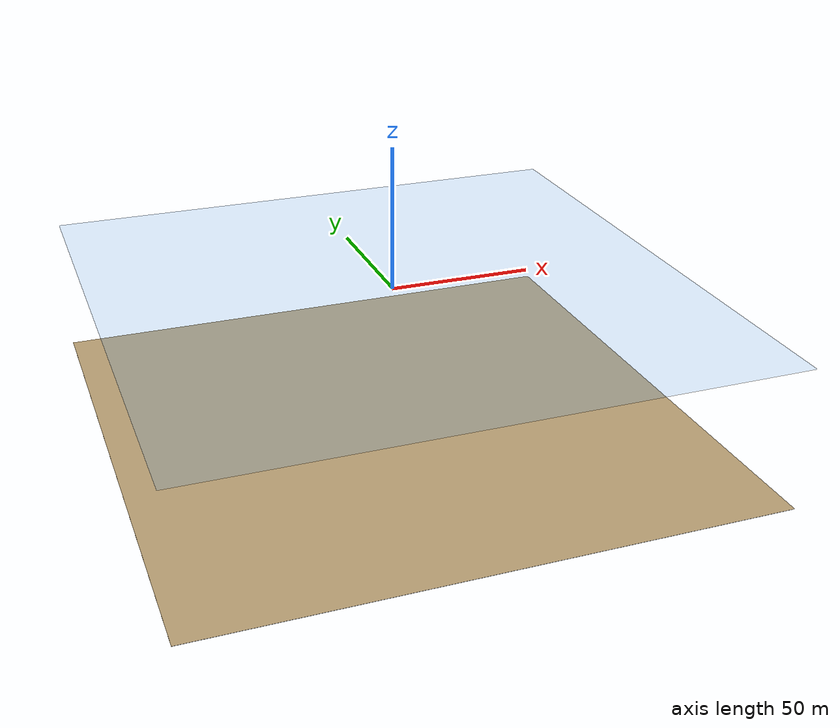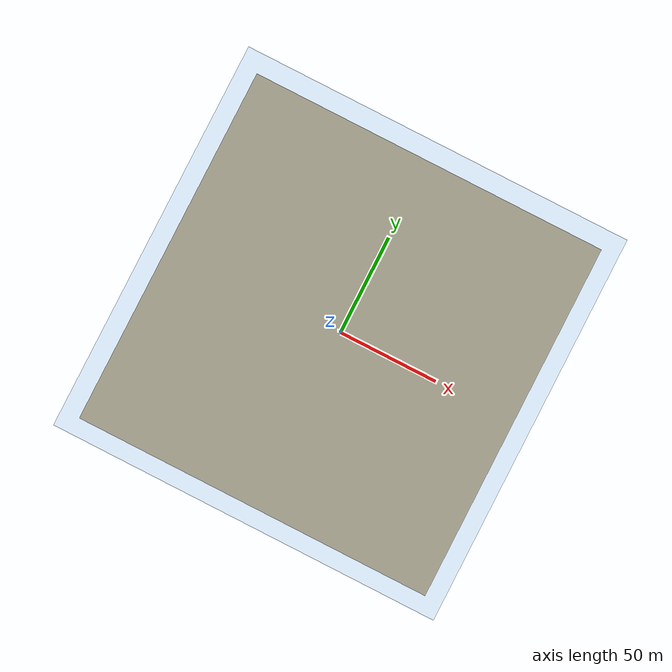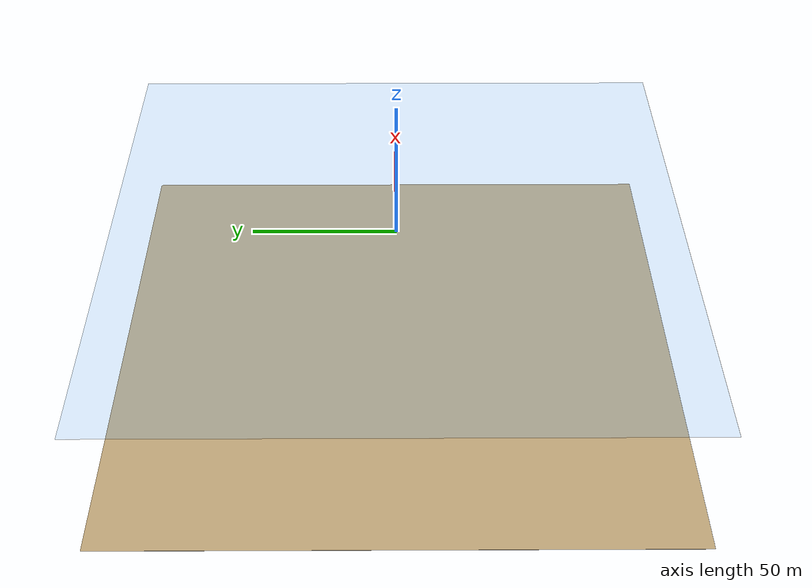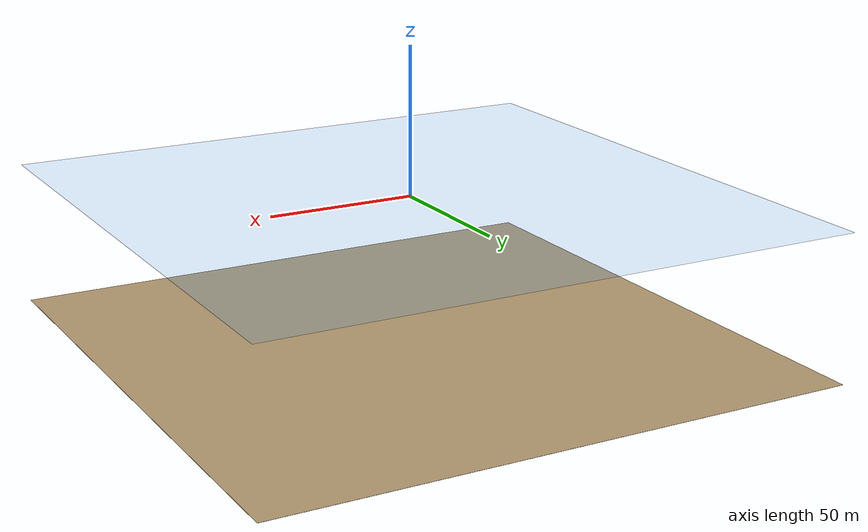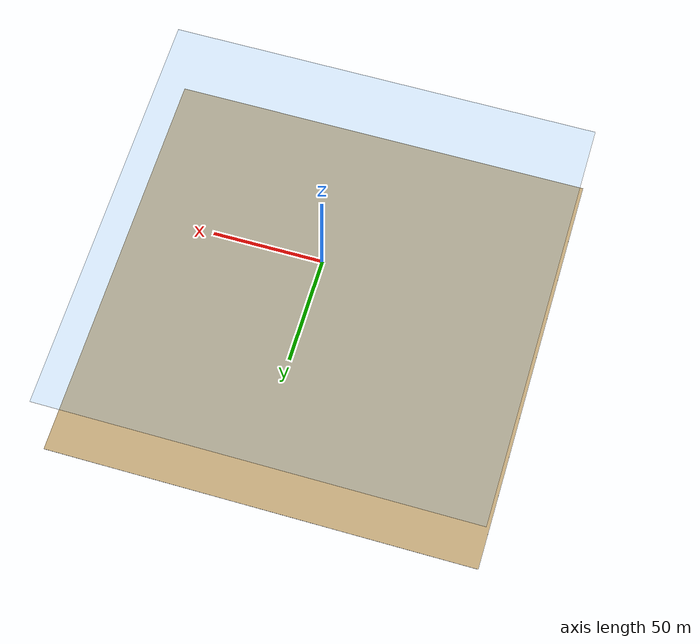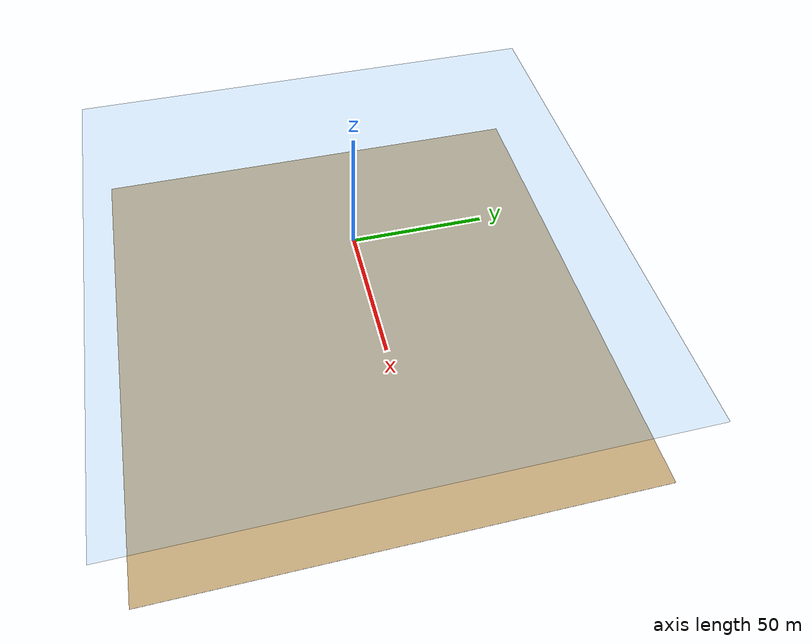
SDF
<?xml version="1.0" ?>
<sdf version="1.5">
  <world name="underwater">

    <physics name="default_physics" default="true" type="ode">
      <max_step_size>0.002</max_step_size>
      <real_time_factor>1</real_time_factor>
      <real_time_update_rate>500</real_time_update_rate>
      <magnetic_field>34 0 -36</magnetic_field>
      <gravity>0 0 -9.8</gravity>
      <ode>
        <solver>
          <type>quick</type>
          <iters>50</iters>
          <sor>0.5</sor>
        </solver>
      </ode>
    </physics>

    <scene>
      <ambient>0.3 0.4 0.5 1.0</ambient>
      <background>0.1 0.2 0.4 1.0</background>
      <sky>
        <clouds><speed>12</speed></clouds>
      </sky>
      <shadows>1</shadows>
      <!-- Subtle fog: objects visible up to ~60 m, fade by 100 m -->
      <fog>
        <color>0.1 0.2 0.4 1.0</color>
        <type>linear</type>
        <density>0.005</density>
        <start>30</start>
        <end>100</end>
      </fog>
    </scene>

    <!-- Lighting -->
    <light type="directional" name="sun1">
      <pose>50 0 150 0 0 0</pose>
      <diffuse>1 1 1 1</diffuse>
      <specular>0.2 0.2 0.2 1</specular>
      <direction>0.3 0.3 -1</direction>
      <cast_shadows>true</cast_shadows>
    </light>
    <include>
      <uri>model://sun</uri>
    </include>

    <model name="water_surface">
      <static>true</static>
      <link name="link">
        <visual name="surface">
          <cast_shadows>false</cast_shadows>
          <pose>0 0 0 0 0 0</pose>
          <geometry>
            <box><size>200 200 0.02</size></box>
          </geometry>
          <material>
            <ambient>0.3 0.6 0.9 1.0</ambient>
            <diffuse>0.3 0.6 0.9 1.0</diffuse>
            <specular>0.5 0.5 0.5 1.0 20</specular>
          </material>
          <!-- 0.85 = 85% transparent: water surface is nearly invisible -->
          <transparency>0.85</transparency>
        </visual>
      </link>
    </model>

    <!-- Seabed at z=-50 with collision (prevents robot sinking infinitely).
         Sandy brown color for visual reference. -->
    <model name="seabed">
      <static>true</static>
      <link name="link">
        <collision name="ground">
          <pose>0 0 -50 0 0 0</pose>
          <geometry>
            <box><size>200 200 0.1</size></box>
          </geometry>
        </collision>
        <visual name="ground">
          <cast_shadows>false</cast_shadows>
          <pose>0 0 -50 0 0 0</pose>
          <geometry>
            <box><size>200 200 0.1</size></box>
          </geometry>
          <material>
            <ambient>0.72 0.62 0.45 1.0</ambient>
            <diffuse>0.72 0.62 0.45 1.0</diffuse>
          </material>
        </visual>
      </link>
    </model>

    <!-- Underwater current plugin: publishes /hydrodynamics/current_velocity -->
    <plugin name="underwater_current_plugin" filename="libuuv_underwater_current_ros_plugin.so">
      <namespace>hydrodynamics</namespace>
      <constant_current>
        <topic>current_velocity</topic>
        <velocity>
          <mean>0</mean>
          <min>0</min>
          <max>5</max>
          <mu>0.0</mu>
          <noiseAmp>0.0</noiseAmp>
        </velocity>
        <horizontal_angle>
          <mean>0</mean>
          <min>-3.141592653589793238</min>
          <max>3.141592653589793238</max>
          <mu>0.0</mu>
          <noiseAmp>0.0</noiseAmp>
        </horizontal_angle>
        <vertical_angle>
          <mean>0</mean>
          <min>-3.141592653589793238</min>
          <max>3.141592653589793238</max>
          <mu>0.0</mu>
          <noiseAmp>0.0</noiseAmp>
        </vertical_angle>
      </constant_current>
    </plugin>

    <plugin name="sc_interface" filename="libuuv_sc_ros_interface_plugin.so"/>

  </world>
</sdf>
